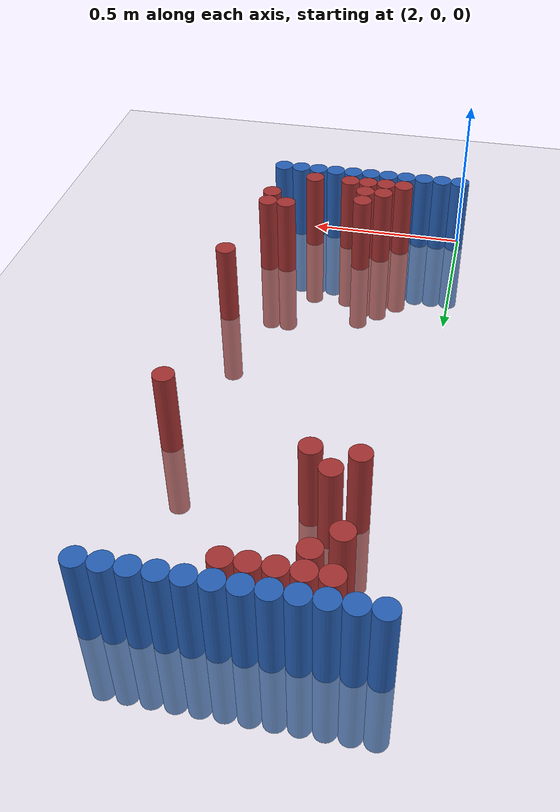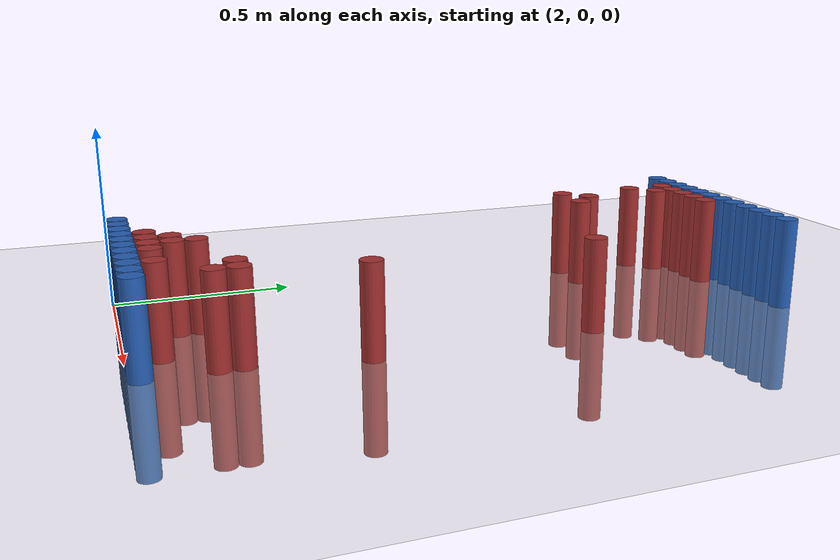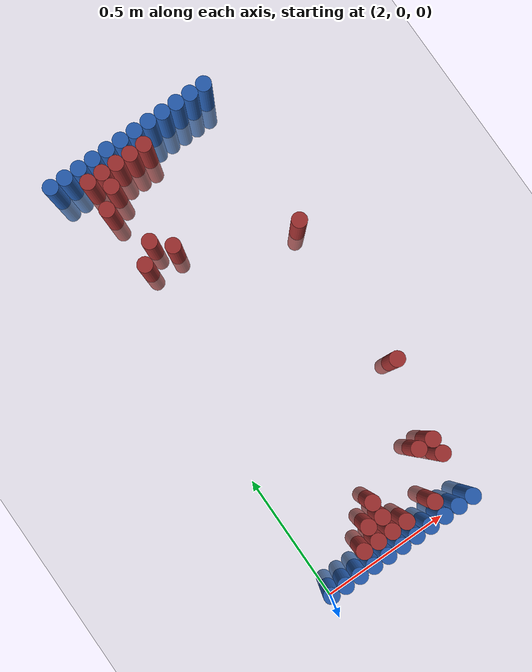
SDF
<sdf version="1.6">
 <world name="default">
  <model name="ground_plane">
   <static>1</static>
   <link name="link">
    <collision name="collision">
     <geometry><plane><normal>0 0 1</normal><size>100 100</size></plane></geometry>
     <surface><friction><ode><mu>100</mu><mu2>50</mu2></ode></friction></surface>
    </collision>
    <visual name="visual">
     <cast_shadows>0</cast_shadows>
     <geometry><plane><normal>0 0 1</normal><size>100 100</size></plane></geometry>
     <material>
      <script><uri>file://media/materials/scripts/gazebo.material</uri><name>Gazebo/Grey</name></script>
     </material>
    </visual>
   </link>
  </model>
  <model name="unit_cylinder_93">
   <static>1</static>
   <pose>2.010000 0.030000 0.000000 0.000000 0.000000 0.000000</pose>
   <link name="link">
    <inertial>
     <mass>1</mass>
     <inertia><ixx>0.145833</ixx><ixy>0</ixy><ixz>0</ixz><iyy>0.145833</iyy><iyz>0</iyz><izz>0.125</izz></inertia>
    </inertial>
    <collision name="collision">
     <geometry><cylinder><radius>0.030000</radius><length>0.5</length></cylinder></geometry>
    </collision>
    <visual name="visual">
     <geometry><cylinder><radius>0.030000</radius><length>0.5</length></cylinder></geometry>
     <material>
      <ambient>0.152000 0.379000 0.720000 1</ambient>
      <diffuse>0.152000 0.379000 0.720000 1</diffuse>
     </material>
     <material>
      <script><name>Gazebo/Grey</name><uri>file://media/materials/scripts/gazebo.material</uri></script>
     </material>
    </visual>
   </link>
  </model>
  <model name="unit_cylinder_94">
   <static>1</static>
   <pose>2.010000 1.770000 0.000000 0.000000 0.000000 0.000000</pose>
   <link name="link">
    <inertial>
     <mass>1</mass>
     <inertia><ixx>0.145833</ixx><ixy>0</ixy><ixz>0</ixz><iyy>0.145833</iyy><iyz>0</iyz><izz>0.125</izz></inertia>
    </inertial>
    <collision name="collision">
     <geometry><cylinder><radius>0.030000</radius><length>0.5</length></cylinder></geometry>
    </collision>
    <visual name="visual">
     <geometry><cylinder><radius>0.030000</radius><length>0.5</length></cylinder></geometry>
     <material>
      <ambient>0.152000 0.379000 0.720000 1</ambient>
      <diffuse>0.152000 0.379000 0.720000 1</diffuse>
     </material>
     <material>
      <script><name>Gazebo/Grey</name><uri>file://media/materials/scripts/gazebo.material</uri></script>
     </material>
    </visual>
   </link>
  </model>
  <model name="unit_cylinder_95">
   <static>1</static>
   <pose>2.070000 1.770000 0.000000 0.000000 0.000000 0.000000</pose>
   <link name="link">
    <inertial>
     <mass>1</mass>
     <inertia><ixx>0.145833</ixx><ixy>0</ixy><ixz>0</ixz><iyy>0.145833</iyy><iyz>0</iyz><izz>0.125</izz></inertia>
    </inertial>
    <collision name="collision">
     <geometry><cylinder><radius>0.030000</radius><length>0.5</length></cylinder></geometry>
    </collision>
    <visual name="visual">
     <geometry><cylinder><radius>0.030000</radius><length>0.5</length></cylinder></geometry>
     <material>
      <ambient>0.152000 0.379000 0.720000 1</ambient>
      <diffuse>0.152000 0.379000 0.720000 1</diffuse>
     </material>
     <material>
      <script><name>Gazebo/Grey</name><uri>file://media/materials/scripts/gazebo.material</uri></script>
     </material>
    </visual>
   </link>
  </model>
  <model name="unit_cylinder_96">
   <static>1</static>
   <pose>2.130000 1.770000 0.000000 0.000000 0.000000 0.000000</pose>
   <link name="link">
    <inertial>
     <mass>1</mass>
     <inertia><ixx>0.145833</ixx><ixy>0</ixy><ixz>0</ixz><iyy>0.145833</iyy><iyz>0</iyz><izz>0.125</izz></inertia>
    </inertial>
    <collision name="collision">
     <geometry><cylinder><radius>0.030000</radius><length>0.5</length></cylinder></geometry>
    </collision>
    <visual name="visual">
     <geometry><cylinder><radius>0.030000</radius><length>0.5</length></cylinder></geometry>
     <material>
      <ambient>0.152000 0.379000 0.720000 1</ambient>
      <diffuse>0.152000 0.379000 0.720000 1</diffuse>
     </material>
     <material>
      <script><name>Gazebo/Grey</name><uri>file://media/materials/scripts/gazebo.material</uri></script>
     </material>
    </visual>
   </link>
  </model>
  <model name="unit_cylinder_97">
   <static>1</static>
   <pose>2.190000 1.770000 0.000000 0.000000 0.000000 0.000000</pose>
   <link name="link">
    <inertial>
     <mass>1</mass>
     <inertia><ixx>0.145833</ixx><ixy>0</ixy><ixz>0</ixz><iyy>0.145833</iyy><iyz>0</iyz><izz>0.125</izz></inertia>
    </inertial>
    <collision name="collision">
     <geometry><cylinder><radius>0.030000</radius><length>0.5</length></cylinder></geometry>
    </collision>
    <visual name="visual">
     <geometry><cylinder><radius>0.030000</radius><length>0.5</length></cylinder></geometry>
     <material>
      <ambient>0.152000 0.379000 0.720000 1</ambient>
      <diffuse>0.152000 0.379000 0.720000 1</diffuse>
     </material>
     <material>
      <script><name>Gazebo/Grey</name><uri>file://media/materials/scripts/gazebo.material</uri></script>
     </material>
    </visual>
   </link>
  </model>
  <model name="unit_cylinder_98">
   <static>1</static>
   <pose>2.250000 1.770000 0.000000 0.000000 0.000000 0.000000</pose>
   <link name="link">
    <inertial>
     <mass>1</mass>
     <inertia><ixx>0.145833</ixx><ixy>0</ixy><ixz>0</ixz><iyy>0.145833</iyy><iyz>0</iyz><izz>0.125</izz></inertia>
    </inertial>
    <collision name="collision">
     <geometry><cylinder><radius>0.030000</radius><length>0.5</length></cylinder></geometry>
    </collision>
    <visual name="visual">
     <geometry><cylinder><radius>0.030000</radius><length>0.5</length></cylinder></geometry>
     <material>
      <ambient>0.152000 0.379000 0.720000 1</ambient>
      <diffuse>0.152000 0.379000 0.720000 1</diffuse>
     </material>
     <material>
      <script><name>Gazebo/Grey</name><uri>file://media/materials/scripts/gazebo.material</uri></script>
     </material>
    </visual>
   </link>
  </model>
  <model name="unit_cylinder_99">
   <static>1</static>
   <pose>2.310000 1.770000 0.000000 0.000000 0.000000 0.000000</pose>
   <link name="link">
    <inertial>
     <mass>1</mass>
     <inertia><ixx>0.145833</ixx><ixy>0</ixy><ixz>0</ixz><iyy>0.145833</iyy><iyz>0</iyz><izz>0.125</izz></inertia>
    </inertial>
    <collision name="collision">
     <geometry><cylinder><radius>0.030000</radius><length>0.5</length></cylinder></geometry>
    </collision>
    <visual name="visual">
     <geometry><cylinder><radius>0.030000</radius><length>0.5</length></cylinder></geometry>
     <material>
      <ambient>0.152000 0.379000 0.720000 1</ambient>
      <diffuse>0.152000 0.379000 0.720000 1</diffuse>
     </material>
     <material>
      <script><name>Gazebo/Grey</name><uri>file://media/materials/scripts/gazebo.material</uri></script>
     </material>
    </visual>
   </link>
  </model>
  <model name="unit_cylinder_100">
   <static>1</static>
   <pose>2.370000 1.770000 0.000000 0.000000 0.000000 0.000000</pose>
   <link name="link">
    <inertial>
     <mass>1</mass>
     <inertia><ixx>0.145833</ixx><ixy>0</ixy><ixz>0</ixz><iyy>0.145833</iyy><iyz>0</iyz><izz>0.125</izz></inertia>
    </inertial>
    <collision name="collision">
     <geometry><cylinder><radius>0.030000</radius><length>0.5</length></cylinder></geometry>
    </collision>
    <visual name="visual">
     <geometry><cylinder><radius>0.030000</radius><length>0.5</length></cylinder></geometry>
     <material>
      <ambient>0.152000 0.379000 0.720000 1</ambient>
      <diffuse>0.152000 0.379000 0.720000 1</diffuse>
     </material>
     <material>
      <script><name>Gazebo/Grey</name><uri>file://media/materials/scripts/gazebo.material</uri></script>
     </material>
    </visual>
   </link>
  </model>
  <model name="unit_cylinder_101">
   <static>1</static>
   <pose>2.430000 1.770000 0.000000 0.000000 0.000000 0.000000</pose>
   <link name="link">
    <inertial>
     <mass>1</mass>
     <inertia><ixx>0.145833</ixx><ixy>0</ixy><ixz>0</ixz><iyy>0.145833</iyy><iyz>0</iyz><izz>0.125</izz></inertia>
    </inertial>
    <collision name="collision">
     <geometry><cylinder><radius>0.030000</radius><length>0.5</length></cylinder></geometry>
    </collision>
    <visual name="visual">
     <geometry><cylinder><radius>0.030000</radius><length>0.5</length></cylinder></geometry>
     <material>
      <ambient>0.152000 0.379000 0.720000 1</ambient>
      <diffuse>0.152000 0.379000 0.720000 1</diffuse>
     </material>
     <material>
      <script><name>Gazebo/Grey</name><uri>file://media/materials/scripts/gazebo.material</uri></script>
     </material>
    </visual>
   </link>
  </model>
  <model name="unit_cylinder_102">
   <static>1</static>
   <pose>2.490000 1.770000 0.000000 0.000000 0.000000 0.000000</pose>
   <link name="link">
    <inertial>
     <mass>1</mass>
     <inertia><ixx>0.145833</ixx><ixy>0</ixy><ixz>0</ixz><iyy>0.145833</iyy><iyz>0</iyz><izz>0.125</izz></inertia>
    </inertial>
    <collision name="collision">
     <geometry><cylinder><radius>0.030000</radius><length>0.5</length></cylinder></geometry>
    </collision>
    <visual name="visual">
     <geometry><cylinder><radius>0.030000</radius><length>0.5</length></cylinder></geometry>
     <material>
      <ambient>0.152000 0.379000 0.720000 1</ambient>
      <diffuse>0.152000 0.379000 0.720000 1</diffuse>
     </material>
     <material>
      <script><name>Gazebo/Grey</name><uri>file://media/materials/scripts/gazebo.material</uri></script>
     </material>
    </visual>
   </link>
  </model>
  <model name="unit_cylinder_103">
   <static>1</static>
   <pose>2.550000 1.770000 0.000000 0.000000 0.000000 0.000000</pose>
   <link name="link">
    <inertial>
     <mass>1</mass>
     <inertia><ixx>0.145833</ixx><ixy>0</ixy><ixz>0</ixz><iyy>0.145833</iyy><iyz>0</iyz><izz>0.125</izz></inertia>
    </inertial>
    <collision name="collision">
     <geometry><cylinder><radius>0.030000</radius><length>0.5</length></cylinder></geometry>
    </collision>
    <visual name="visual">
     <geometry><cylinder><radius>0.030000</radius><length>0.5</length></cylinder></geometry>
     <material>
      <ambient>0.152000 0.379000 0.720000 1</ambient>
      <diffuse>0.152000 0.379000 0.720000 1</diffuse>
     </material>
     <material>
      <script><name>Gazebo/Grey</name><uri>file://media/materials/scripts/gazebo.material</uri></script>
     </material>
    </visual>
   </link>
  </model>
  <model name="unit_cylinder_104">
   <static>1</static>
   <pose>2.610000 1.770000 0.000000 0.000000 0.000000 0.000000</pose>
   <link name="link">
    <inertial>
     <mass>1</mass>
     <inertia><ixx>0.145833</ixx><ixy>0</ixy><ixz>0</ixz><iyy>0.145833</iyy><iyz>0</iyz><izz>0.125</izz></inertia>
    </inertial>
    <collision name="collision">
     <geometry><cylinder><radius>0.030000</radius><length>0.5</length></cylinder></geometry>
    </collision>
    <visual name="visual">
     <geometry><cylinder><radius>0.030000</radius><length>0.5</length></cylinder></geometry>
     <material>
      <ambient>0.152000 0.379000 0.720000 1</ambient>
      <diffuse>0.152000 0.379000 0.720000 1</diffuse>
     </material>
     <material>
      <script><name>Gazebo/Grey</name><uri>file://media/materials/scripts/gazebo.material</uri></script>
     </material>
    </visual>
   </link>
  </model>
  <model name="unit_cylinder_105">
   <static>1</static>
   <pose>2.670000 1.770000 0.000000 0.000000 0.000000 0.000000</pose>
   <link name="link">
    <inertial>
     <mass>1</mass>
     <inertia><ixx>0.145833</ixx><ixy>0</ixy><ixz>0</ixz><iyy>0.145833</iyy><iyz>0</iyz><izz>0.125</izz></inertia>
    </inertial>
    <collision name="collision">
     <geometry><cylinder><radius>0.030000</radius><length>0.5</length></cylinder></geometry>
    </collision>
    <visual name="visual">
     <geometry><cylinder><radius>0.030000</radius><length>0.5</length></cylinder></geometry>
     <material>
      <ambient>0.152000 0.379000 0.720000 1</ambient>
      <diffuse>0.152000 0.379000 0.720000 1</diffuse>
     </material>
     <material>
      <script><name>Gazebo/Grey</name><uri>file://media/materials/scripts/gazebo.material</uri></script>
     </material>
    </visual>
   </link>
  </model>
  <model name="unit_cylinder_125">
   <static>1</static>
   <pose>2.130000 1.710000 0.000000 0.000000 0.000000 0.000000</pose>
   <link name="link">
    <inertial>
     <mass>1</mass>
     <inertia><ixx>0.145833</ixx><ixy>0</ixy><ixz>0</ixz><iyy>0.145833</iyy><iyz>0</iyz><izz>0.125</izz></inertia>
    </inertial>
    <collision name="collision">
     <geometry><cylinder><radius>0.030000</radius><length>0.5</length></cylinder></geometry>
    </collision>
    <visual name="visual">
     <geometry><cylinder><radius>0.030000</radius><length>0.5</length></cylinder></geometry>
     <material>
      <ambient>0.648000 0.192000 0.192000 1</ambient>
      <diffuse>0.648000 0.192000 0.192000 1</diffuse>
     </material>
     <material>
      <script><name>Gazebo/Grey</name><uri>file://media/materials/scripts/gazebo.material</uri></script>
     </material>
    </visual>
   </link>
  </model>
  <model name="unit_cylinder_126">
   <static>1</static>
   <pose>2.190000 1.710000 0.000000 0.000000 0.000000 0.000000</pose>
   <link name="link">
    <inertial>
     <mass>1</mass>
     <inertia><ixx>0.145833</ixx><ixy>0</ixy><ixz>0</ixz><iyy>0.145833</iyy><iyz>0</iyz><izz>0.125</izz></inertia>
    </inertial>
    <collision name="collision">
     <geometry><cylinder><radius>0.030000</radius><length>0.5</length></cylinder></geometry>
    </collision>
    <visual name="visual">
     <geometry><cylinder><radius>0.030000</radius><length>0.5</length></cylinder></geometry>
     <material>
      <ambient>0.648000 0.192000 0.192000 1</ambient>
      <diffuse>0.648000 0.192000 0.192000 1</diffuse>
     </material>
     <material>
      <script><name>Gazebo/Grey</name><uri>file://media/materials/scripts/gazebo.material</uri></script>
     </material>
    </visual>
   </link>
  </model>
  <model name="unit_cylinder_127">
   <static>1</static>
   <pose>2.250000 1.710000 0.000000 0.000000 0.000000 0.000000</pose>
   <link name="link">
    <inertial>
     <mass>1</mass>
     <inertia><ixx>0.145833</ixx><ixy>0</ixy><ixz>0</ixz><iyy>0.145833</iyy><iyz>0</iyz><izz>0.125</izz></inertia>
    </inertial>
    <collision name="collision">
     <geometry><cylinder><radius>0.030000</radius><length>0.5</length></cylinder></geometry>
    </collision>
    <visual name="visual">
     <geometry><cylinder><radius>0.030000</radius><length>0.5</length></cylinder></geometry>
     <material>
      <ambient>0.648000 0.192000 0.192000 1</ambient>
      <diffuse>0.648000 0.192000 0.192000 1</diffuse>
     </material>
     <material>
      <script><name>Gazebo/Grey</name><uri>file://media/materials/scripts/gazebo.material</uri></script>
     </material>
    </visual>
   </link>
  </model>
  <model name="unit_cylinder_128">
   <static>1</static>
   <pose>2.310000 1.710000 0.000000 0.000000 0.000000 0.000000</pose>
   <link name="link">
    <inertial>
     <mass>1</mass>
     <inertia><ixx>0.145833</ixx><ixy>0</ixy><ixz>0</ixz><iyy>0.145833</iyy><iyz>0</iyz><izz>0.125</izz></inertia>
    </inertial>
    <collision name="collision">
     <geometry><cylinder><radius>0.030000</radius><length>0.5</length></cylinder></geometry>
    </collision>
    <visual name="visual">
     <geometry><cylinder><radius>0.030000</radius><length>0.5</length></cylinder></geometry>
     <material>
      <ambient>0.648000 0.192000 0.192000 1</ambient>
      <diffuse>0.648000 0.192000 0.192000 1</diffuse>
     </material>
     <material>
      <script><name>Gazebo/Grey</name><uri>file://media/materials/scripts/gazebo.material</uri></script>
     </material>
    </visual>
   </link>
  </model>
  <model name="unit_cylinder_129">
   <static>1</static>
   <pose>2.370000 1.710000 0.000000 0.000000 0.000000 0.000000</pose>
   <link name="link">
    <inertial>
     <mass>1</mass>
     <inertia><ixx>0.145833</ixx><ixy>0</ixy><ixz>0</ixz><iyy>0.145833</iyy><iyz>0</iyz><izz>0.125</izz></inertia>
    </inertial>
    <collision name="collision">
     <geometry><cylinder><radius>0.030000</radius><length>0.5</length></cylinder></geometry>
    </collision>
    <visual name="visual">
     <geometry><cylinder><radius>0.030000</radius><length>0.5</length></cylinder></geometry>
     <material>
      <ambient>0.648000 0.192000 0.192000 1</ambient>
      <diffuse>0.648000 0.192000 0.192000 1</diffuse>
     </material>
     <material>
      <script><name>Gazebo/Grey</name><uri>file://media/materials/scripts/gazebo.material</uri></script>
     </material>
    </visual>
   </link>
  </model>
  <model name="unit_cylinder_136">
   <static>1</static>
   <pose>2.190000 1.650000 0.000000 0.000000 0.000000 0.000000</pose>
   <link name="link">
    <inertial>
     <mass>1</mass>
     <inertia><ixx>0.145833</ixx><ixy>0</ixy><ixz>0</ixz><iyy>0.145833</iyy><iyz>0</iyz><izz>0.125</izz></inertia>
    </inertial>
    <collision name="collision">
     <geometry><cylinder><radius>0.030000</radius><length>0.5</length></cylinder></geometry>
    </collision>
    <visual name="visual">
     <geometry><cylinder><radius>0.030000</radius><length>0.5</length></cylinder></geometry>
     <material>
      <ambient>0.648000 0.192000 0.192000 1</ambient>
      <diffuse>0.648000 0.192000 0.192000 1</diffuse>
     </material>
     <material>
      <script><name>Gazebo/Grey</name><uri>file://media/materials/scripts/gazebo.material</uri></script>
     </material>
    </visual>
   </link>
  </model>
  <model name="unit_cylinder_139">
   <static>1</static>
   <pose>2.130000 1.590000 0.000000 0.000000 0.000000 0.000000</pose>
   <link name="link">
    <inertial>
     <mass>1</mass>
     <inertia><ixx>0.145833</ixx><ixy>0</ixy><ixz>0</ixz><iyy>0.145833</iyy><iyz>0</iyz><izz>0.125</izz></inertia>
    </inertial>
    <collision name="collision">
     <geometry><cylinder><radius>0.030000</radius><length>0.5</length></cylinder></geometry>
    </collision>
    <visual name="visual">
     <geometry><cylinder><radius>0.030000</radius><length>0.5</length></cylinder></geometry>
     <material>
      <ambient>0.648000 0.192000 0.192000 1</ambient>
      <diffuse>0.648000 0.192000 0.192000 1</diffuse>
     </material>
     <material>
      <script><name>Gazebo/Grey</name><uri>file://media/materials/scripts/gazebo.material</uri></script>
     </material>
    </visual>
   </link>
  </model>
  <model name="unit_cylinder_145">
   <static>1</static>
   <pose>2.190000 1.410000 0.000000 0.000000 0.000000 0.000000</pose>
   <link name="link">
    <inertial>
     <mass>1</mass>
     <inertia><ixx>0.145833</ixx><ixy>0</ixy><ixz>0</ixz><iyy>0.145833</iyy><iyz>0</iyz><izz>0.125</izz></inertia>
    </inertial>
    <collision name="collision">
     <geometry><cylinder><radius>0.030000</radius><length>0.5</length></cylinder></geometry>
    </collision>
    <visual name="visual">
     <geometry><cylinder><radius>0.030000</radius><length>0.5</length></cylinder></geometry>
     <material>
      <ambient>0.648000 0.192000 0.192000 1</ambient>
      <diffuse>0.648000 0.192000 0.192000 1</diffuse>
     </material>
     <material>
      <script><name>Gazebo/Grey</name><uri>file://media/materials/scripts/gazebo.material</uri></script>
     </material>
    </visual>
   </link>
  </model>
  <model name="unit_cylinder_146">
   <static>1</static>
   <pose>2.130000 1.350000 0.000000 0.000000 0.000000 0.000000</pose>
   <link name="link">
    <inertial>
     <mass>1</mass>
     <inertia><ixx>0.145833</ixx><ixy>0</ixy><ixz>0</ixz><iyy>0.145833</iyy><iyz>0</iyz><izz>0.125</izz></inertia>
    </inertial>
    <collision name="collision">
     <geometry><cylinder><radius>0.030000</radius><length>0.5</length></cylinder></geometry>
    </collision>
    <visual name="visual">
     <geometry><cylinder><radius>0.030000</radius><length>0.5</length></cylinder></geometry>
     <material>
      <ambient>0.648000 0.192000 0.192000 1</ambient>
      <diffuse>0.648000 0.192000 0.192000 1</diffuse>
     </material>
     <material>
      <script><name>Gazebo/Grey</name><uri>file://media/materials/scripts/gazebo.material</uri></script>
     </material>
    </visual>
   </link>
  </model>
  <model name="unit_cylinder_147">
   <static>1</static>
   <pose>2.250000 1.350000 0.000000 0.000000 0.000000 0.000000</pose>
   <link name="link">
    <inertial>
     <mass>1</mass>
     <inertia><ixx>0.145833</ixx><ixy>0</ixy><ixz>0</ixz><iyy>0.145833</iyy><iyz>0</iyz><izz>0.125</izz></inertia>
    </inertial>
    <collision name="collision">
     <geometry><cylinder><radius>0.030000</radius><length>0.5</length></cylinder></geometry>
    </collision>
    <visual name="visual">
     <geometry><cylinder><radius>0.030000</radius><length>0.5</length></cylinder></geometry>
     <material>
      <ambient>0.648000 0.192000 0.192000 1</ambient>
      <diffuse>0.648000 0.192000 0.192000 1</diffuse>
     </material>
     <material>
      <script><name>Gazebo/Grey</name><uri>file://media/materials/scripts/gazebo.material</uri></script>
     </material>
    </visual>
   </link>
  </model>
  <model name="unit_cylinder_153">
   <static>1</static>
   <pose>2.670000 1.170000 0.000000 0.000000 0.000000 0.000000</pose>
   <link name="link">
    <inertial>
     <mass>1</mass>
     <inertia><ixx>0.145833</ixx><ixy>0</ixy><ixz>0</ixz><iyy>0.145833</iyy><iyz>0</iyz><izz>0.125</izz></inertia>
    </inertial>
    <collision name="collision">
     <geometry><cylinder><radius>0.030000</radius><length>0.5</length></cylinder></geometry>
    </collision>
    <visual name="visual">
     <geometry><cylinder><radius>0.030000</radius><length>0.5</length></cylinder></geometry>
     <material>
      <ambient>0.648000 0.192000 0.192000 1</ambient>
      <diffuse>0.648000 0.192000 0.192000 1</diffuse>
     </material>
     <material>
      <script><name>Gazebo/Grey</name><uri>file://media/materials/scripts/gazebo.material</uri></script>
     </material>
    </visual>
   </link>
  </model>
  <model name="unit_cylinder_161">
   <static>1</static>
   <pose>2.670000 0.570000 0.000000 0.000000 0.000000 0.000000</pose>
   <link name="link">
    <inertial>
     <mass>1</mass>
     <inertia><ixx>0.145833</ixx><ixy>0</ixy><ixz>0</ixz><iyy>0.145833</iyy><iyz>0</iyz><izz>0.125</izz></inertia>
    </inertial>
    <collision name="collision">
     <geometry><cylinder><radius>0.030000</radius><length>0.5</length></cylinder></geometry>
    </collision>
    <visual name="visual">
     <geometry><cylinder><radius>0.030000</radius><length>0.5</length></cylinder></geometry>
     <material>
      <ambient>0.648000 0.192000 0.192000 1</ambient>
      <diffuse>0.648000 0.192000 0.192000 1</diffuse>
     </material>
     <material>
      <script><name>Gazebo/Grey</name><uri>file://media/materials/scripts/gazebo.material</uri></script>
     </material>
    </visual>
   </link>
  </model>
  <model name="unit_cylinder_177">
   <static>1</static>
   <pose>2.550000 0.270000 0.000000 0.000000 0.000000 0.000000</pose>
   <link name="link">
    <inertial>
     <mass>1</mass>
     <inertia><ixx>0.145833</ixx><ixy>0</ixy><ixz>0</ixz><iyy>0.145833</iyy><iyz>0</iyz><izz>0.125</izz></inertia>
    </inertial>
    <collision name="collision">
     <geometry><cylinder><radius>0.030000</radius><length>0.5</length></cylinder></geometry>
    </collision>
    <visual name="visual">
     <geometry><cylinder><radius>0.030000</radius><length>0.5</length></cylinder></geometry>
     <material>
      <ambient>0.648000 0.192000 0.192000 1</ambient>
      <diffuse>0.648000 0.192000 0.192000 1</diffuse>
     </material>
     <material>
      <script><name>Gazebo/Grey</name><uri>file://media/materials/scripts/gazebo.material</uri></script>
     </material>
    </visual>
   </link>
  </model>
  <model name="unit_cylinder_178">
   <static>1</static>
   <pose>2.610000 0.270000 0.000000 0.000000 0.000000 0.000000</pose>
   <link name="link">
    <inertial>
     <mass>1</mass>
     <inertia><ixx>0.145833</ixx><ixy>0</ixy><ixz>0</ixz><iyy>0.145833</iyy><iyz>0</iyz><izz>0.125</izz></inertia>
    </inertial>
    <collision name="collision">
     <geometry><cylinder><radius>0.030000</radius><length>0.5</length></cylinder></geometry>
    </collision>
    <visual name="visual">
     <geometry><cylinder><radius>0.030000</radius><length>0.5</length></cylinder></geometry>
     <material>
      <ambient>0.648000 0.192000 0.192000 1</ambient>
      <diffuse>0.648000 0.192000 0.192000 1</diffuse>
     </material>
     <material>
      <script><name>Gazebo/Grey</name><uri>file://media/materials/scripts/gazebo.material</uri></script>
     </material>
    </visual>
   </link>
  </model>
  <model name="unit_cylinder_182">
   <static>1</static>
   <pose>2.310000 0.210000 0.000000 0.000000 0.000000 0.000000</pose>
   <link name="link">
    <inertial>
     <mass>1</mass>
     <inertia><ixx>0.145833</ixx><ixy>0</ixy><ixz>0</ixz><iyy>0.145833</iyy><iyz>0</iyz><izz>0.125</izz></inertia>
    </inertial>
    <collision name="collision">
     <geometry><cylinder><radius>0.030000</radius><length>0.5</length></cylinder></geometry>
    </collision>
    <visual name="visual">
     <geometry><cylinder><radius>0.030000</radius><length>0.5</length></cylinder></geometry>
     <material>
      <ambient>0.648000 0.192000 0.192000 1</ambient>
      <diffuse>0.648000 0.192000 0.192000 1</diffuse>
     </material>
     <material>
      <script><name>Gazebo/Grey</name><uri>file://media/materials/scripts/gazebo.material</uri></script>
     </material>
    </visual>
   </link>
  </model>
  <model name="unit_cylinder_183">
   <static>1</static>
   <pose>2.610000 0.210000 0.000000 0.000000 0.000000 0.000000</pose>
   <link name="link">
    <inertial>
     <mass>1</mass>
     <inertia><ixx>0.145833</ixx><ixy>0</ixy><ixz>0</ixz><iyy>0.145833</iyy><iyz>0</iyz><izz>0.125</izz></inertia>
    </inertial>
    <collision name="collision">
     <geometry><cylinder><radius>0.030000</radius><length>0.5</length></cylinder></geometry>
    </collision>
    <visual name="visual">
     <geometry><cylinder><radius>0.030000</radius><length>0.5</length></cylinder></geometry>
     <material>
      <ambient>0.648000 0.192000 0.192000 1</ambient>
      <diffuse>0.648000 0.192000 0.192000 1</diffuse>
     </material>
     <material>
      <script><name>Gazebo/Grey</name><uri>file://media/materials/scripts/gazebo.material</uri></script>
     </material>
    </visual>
   </link>
  </model>
  <model name="unit_cylinder_186">
   <static>1</static>
   <pose>2.250000 0.150000 0.000000 0.000000 0.000000 0.000000</pose>
   <link name="link">
    <inertial>
     <mass>1</mass>
     <inertia><ixx>0.145833</ixx><ixy>0</ixy><ixz>0</ixz><iyy>0.145833</iyy><iyz>0</iyz><izz>0.125</izz></inertia>
    </inertial>
    <collision name="collision">
     <geometry><cylinder><radius>0.030000</radius><length>0.5</length></cylinder></geometry>
    </collision>
    <visual name="visual">
     <geometry><cylinder><radius>0.030000</radius><length>0.5</length></cylinder></geometry>
     <material>
      <ambient>0.648000 0.192000 0.192000 1</ambient>
      <diffuse>0.648000 0.192000 0.192000 1</diffuse>
     </material>
     <material>
      <script><name>Gazebo/Grey</name><uri>file://media/materials/scripts/gazebo.material</uri></script>
     </material>
    </visual>
   </link>
  </model>
  <model name="unit_cylinder_187">
   <static>1</static>
   <pose>2.310000 0.150000 0.000000 0.000000 0.000000 0.000000</pose>
   <link name="link">
    <inertial>
     <mass>1</mass>
     <inertia><ixx>0.145833</ixx><ixy>0</ixy><ixz>0</ixz><iyy>0.145833</iyy><iyz>0</iyz><izz>0.125</izz></inertia>
    </inertial>
    <collision name="collision">
     <geometry><cylinder><radius>0.030000</radius><length>0.5</length></cylinder></geometry>
    </collision>
    <visual name="visual">
     <geometry><cylinder><radius>0.030000</radius><length>0.5</length></cylinder></geometry>
     <material>
      <ambient>0.648000 0.192000 0.192000 1</ambient>
      <diffuse>0.648000 0.192000 0.192000 1</diffuse>
     </material>
     <material>
      <script><name>Gazebo/Grey</name><uri>file://media/materials/scripts/gazebo.material</uri></script>
     </material>
    </visual>
   </link>
  </model>
  <model name="unit_cylinder_189">
   <static>1</static>
   <pose>2.190000 0.090000 0.000000 0.000000 0.000000 0.000000</pose>
   <link name="link">
    <inertial>
     <mass>1</mass>
     <inertia><ixx>0.145833</ixx><ixy>0</ixy><ixz>0</ixz><iyy>0.145833</iyy><iyz>0</iyz><izz>0.125</izz></inertia>
    </inertial>
    <collision name="collision">
     <geometry><cylinder><radius>0.030000</radius><length>0.5</length></cylinder></geometry>
    </collision>
    <visual name="visual">
     <geometry><cylinder><radius>0.030000</radius><length>0.5</length></cylinder></geometry>
     <material>
      <ambient>0.648000 0.192000 0.192000 1</ambient>
      <diffuse>0.648000 0.192000 0.192000 1</diffuse>
     </material>
     <material>
      <script><name>Gazebo/Grey</name><uri>file://media/materials/scripts/gazebo.material</uri></script>
     </material>
    </visual>
   </link>
  </model>
  <model name="unit_cylinder_190">
   <static>1</static>
   <pose>2.250000 0.090000 0.000000 0.000000 0.000000 0.000000</pose>
   <link name="link">
    <inertial>
     <mass>1</mass>
     <inertia><ixx>0.145833</ixx><ixy>0</ixy><ixz>0</ixz><iyy>0.145833</iyy><iyz>0</iyz><izz>0.125</izz></inertia>
    </inertial>
    <collision name="collision">
     <geometry><cylinder><radius>0.030000</radius><length>0.5</length></cylinder></geometry>
    </collision>
    <visual name="visual">
     <geometry><cylinder><radius>0.030000</radius><length>0.5</length></cylinder></geometry>
     <material>
      <ambient>0.648000 0.192000 0.192000 1</ambient>
      <diffuse>0.648000 0.192000 0.192000 1</diffuse>
     </material>
     <material>
      <script><name>Gazebo/Grey</name><uri>file://media/materials/scripts/gazebo.material</uri></script>
     </material>
    </visual>
   </link>
  </model>
  <model name="unit_cylinder_191">
   <static>1</static>
   <pose>2.310000 0.090000 0.000000 0.000000 0.000000 0.000000</pose>
   <link name="link">
    <inertial>
     <mass>1</mass>
     <inertia><ixx>0.145833</ixx><ixy>0</ixy><ixz>0</ixz><iyy>0.145833</iyy><iyz>0</iyz><izz>0.125</izz></inertia>
    </inertial>
    <collision name="collision">
     <geometry><cylinder><radius>0.030000</radius><length>0.5</length></cylinder></geometry>
    </collision>
    <visual name="visual">
     <geometry><cylinder><radius>0.030000</radius><length>0.5</length></cylinder></geometry>
     <material>
      <ambient>0.648000 0.192000 0.192000 1</ambient>
      <diffuse>0.648000 0.192000 0.192000 1</diffuse>
     </material>
     <material>
      <script><name>Gazebo/Grey</name><uri>file://media/materials/scripts/gazebo.material</uri></script>
     </material>
    </visual>
   </link>
  </model>
  <model name="unit_cylinder_192">
   <static>1</static>
   <pose>2.370000 0.090000 0.000000 0.000000 0.000000 0.000000</pose>
   <link name="link">
    <inertial>
     <mass>1</mass>
     <inertia><ixx>0.145833</ixx><ixy>0</ixy><ixz>0</ixz><iyy>0.145833</iyy><iyz>0</iyz><izz>0.125</izz></inertia>
    </inertial>
    <collision name="collision">
     <geometry><cylinder><radius>0.030000</radius><length>0.5</length></cylinder></geometry>
    </collision>
    <visual name="visual">
     <geometry><cylinder><radius>0.030000</radius><length>0.5</length></cylinder></geometry>
     <material>
      <ambient>0.648000 0.192000 0.192000 1</ambient>
      <diffuse>0.648000 0.192000 0.192000 1</diffuse>
     </material>
     <material>
      <script><name>Gazebo/Grey</name><uri>file://media/materials/scripts/gazebo.material</uri></script>
     </material>
    </visual>
   </link>
  </model>
  <model name="unit_cylinder_193">
   <static>1</static>
   <pose>2.490000 0.090000 0.000000 0.000000 0.000000 0.000000</pose>
   <link name="link">
    <inertial>
     <mass>1</mass>
     <inertia><ixx>0.145833</ixx><ixy>0</ixy><ixz>0</ixz><iyy>0.145833</iyy><iyz>0</iyz><izz>0.125</izz></inertia>
    </inertial>
    <collision name="collision">
     <geometry><cylinder><radius>0.030000</radius><length>0.5</length></cylinder></geometry>
    </collision>
    <visual name="visual">
     <geometry><cylinder><radius>0.030000</radius><length>0.5</length></cylinder></geometry>
     <material>
      <ambient>0.648000 0.192000 0.192000 1</ambient>
      <diffuse>0.648000 0.192000 0.192000 1</diffuse>
     </material>
     <material>
      <script><name>Gazebo/Grey</name><uri>file://media/materials/scripts/gazebo.material</uri></script>
     </material>
    </visual>
   </link>
  </model>
  <model name="unit_cylinder_202">
   <static>1</static>
   <pose>2.070000 0.030000 0.000000 0.000000 0.000000 0.000000</pose>
   <link name="link">
    <inertial>
     <mass>1</mass>
     <inertia><ixx>0.145833</ixx><ixy>0</ixy><ixz>0</ixz><iyy>0.145833</iyy><iyz>0</iyz><izz>0.125</izz></inertia>
    </inertial>
    <collision name="collision">
     <geometry><cylinder><radius>0.030000</radius><length>0.5</length></cylinder></geometry>
    </collision>
    <visual name="visual">
     <geometry><cylinder><radius>0.030000</radius><length>0.5</length></cylinder></geometry>
     <material>
      <ambient>0.152000 0.379000 0.720000 1</ambient>
      <diffuse>0.152000 0.379000 0.720000 1</diffuse>
     </material>
     <material>
      <script><name>Gazebo/Grey</name><uri>file://media/materials/scripts/gazebo.material</uri></script>
     </material>
    </visual>
   </link>
  </model>
  <model name="unit_cylinder_203">
   <static>1</static>
   <pose>2.130000 0.030000 0.000000 0.000000 0.000000 0.000000</pose>
   <link name="link">
    <inertial>
     <mass>1</mass>
     <inertia><ixx>0.145833</ixx><ixy>0</ixy><ixz>0</ixz><iyy>0.145833</iyy><iyz>0</iyz><izz>0.125</izz></inertia>
    </inertial>
    <collision name="collision">
     <geometry><cylinder><radius>0.030000</radius><length>0.5</length></cylinder></geometry>
    </collision>
    <visual name="visual">
     <geometry><cylinder><radius>0.030000</radius><length>0.5</length></cylinder></geometry>
     <material>
      <ambient>0.152000 0.379000 0.720000 1</ambient>
      <diffuse>0.152000 0.379000 0.720000 1</diffuse>
     </material>
     <material>
      <script><name>Gazebo/Grey</name><uri>file://media/materials/scripts/gazebo.material</uri></script>
     </material>
    </visual>
   </link>
  </model>
  <model name="unit_cylinder_204">
   <static>1</static>
   <pose>2.190000 0.030000 0.000000 0.000000 0.000000 0.000000</pose>
   <link name="link">
    <inertial>
     <mass>1</mass>
     <inertia><ixx>0.145833</ixx><ixy>0</ixy><ixz>0</ixz><iyy>0.145833</iyy><iyz>0</iyz><izz>0.125</izz></inertia>
    </inertial>
    <collision name="collision">
     <geometry><cylinder><radius>0.030000</radius><length>0.5</length></cylinder></geometry>
    </collision>
    <visual name="visual">
     <geometry><cylinder><radius>0.030000</radius><length>0.5</length></cylinder></geometry>
     <material>
      <ambient>0.152000 0.379000 0.720000 1</ambient>
      <diffuse>0.152000 0.379000 0.720000 1</diffuse>
     </material>
     <material>
      <script><name>Gazebo/Grey</name><uri>file://media/materials/scripts/gazebo.material</uri></script>
     </material>
    </visual>
   </link>
  </model>
  <model name="unit_cylinder_205">
   <static>1</static>
   <pose>2.250000 0.030000 0.000000 0.000000 0.000000 0.000000</pose>
   <link name="link">
    <inertial>
     <mass>1</mass>
     <inertia><ixx>0.145833</ixx><ixy>0</ixy><ixz>0</ixz><iyy>0.145833</iyy><iyz>0</iyz><izz>0.125</izz></inertia>
    </inertial>
    <collision name="collision">
     <geometry><cylinder><radius>0.030000</radius><length>0.5</length></cylinder></geometry>
    </collision>
    <visual name="visual">
     <geometry><cylinder><radius>0.030000</radius><length>0.5</length></cylinder></geometry>
     <material>
      <ambient>0.152000 0.379000 0.720000 1</ambient>
      <diffuse>0.152000 0.379000 0.720000 1</diffuse>
     </material>
     <material>
      <script><name>Gazebo/Grey</name><uri>file://media/materials/scripts/gazebo.material</uri></script>
     </material>
    </visual>
   </link>
  </model>
  <model name="unit_cylinder_206">
   <static>1</static>
   <pose>2.310000 0.030000 0.000000 0.000000 0.000000 0.000000</pose>
   <link name="link">
    <inertial>
     <mass>1</mass>
     <inertia><ixx>0.145833</ixx><ixy>0</ixy><ixz>0</ixz><iyy>0.145833</iyy><iyz>0</iyz><izz>0.125</izz></inertia>
    </inertial>
    <collision name="collision">
     <geometry><cylinder><radius>0.030000</radius><length>0.5</length></cylinder></geometry>
    </collision>
    <visual name="visual">
     <geometry><cylinder><radius>0.030000</radius><length>0.5</length></cylinder></geometry>
     <material>
      <ambient>0.152000 0.379000 0.720000 1</ambient>
      <diffuse>0.152000 0.379000 0.720000 1</diffuse>
     </material>
     <material>
      <script><name>Gazebo/Grey</name><uri>file://media/materials/scripts/gazebo.material</uri></script>
     </material>
    </visual>
   </link>
  </model>
  <model name="unit_cylinder_207">
   <static>1</static>
   <pose>2.370000 0.030000 0.000000 0.000000 0.000000 0.000000</pose>
   <link name="link">
    <inertial>
     <mass>1</mass>
     <inertia><ixx>0.145833</ixx><ixy>0</ixy><ixz>0</ixz><iyy>0.145833</iyy><iyz>0</iyz><izz>0.125</izz></inertia>
    </inertial>
    <collision name="collision">
     <geometry><cylinder><radius>0.030000</radius><length>0.5</length></cylinder></geometry>
    </collision>
    <visual name="visual">
     <geometry><cylinder><radius>0.030000</radius><length>0.5</length></cylinder></geometry>
     <material>
      <ambient>0.152000 0.379000 0.720000 1</ambient>
      <diffuse>0.152000 0.379000 0.720000 1</diffuse>
     </material>
     <material>
      <script><name>Gazebo/Grey</name><uri>file://media/materials/scripts/gazebo.material</uri></script>
     </material>
    </visual>
   </link>
  </model>
  <model name="unit_cylinder_208">
   <static>1</static>
   <pose>2.430000 0.030000 0.000000 0.000000 0.000000 0.000000</pose>
   <link name="link">
    <inertial>
     <mass>1</mass>
     <inertia><ixx>0.145833</ixx><ixy>0</ixy><ixz>0</ixz><iyy>0.145833</iyy><iyz>0</iyz><izz>0.125</izz></inertia>
    </inertial>
    <collision name="collision">
     <geometry><cylinder><radius>0.030000</radius><length>0.5</length></cylinder></geometry>
    </collision>
    <visual name="visual">
     <geometry><cylinder><radius>0.030000</radius><length>0.5</length></cylinder></geometry>
     <material>
      <ambient>0.152000 0.379000 0.720000 1</ambient>
      <diffuse>0.152000 0.379000 0.720000 1</diffuse>
     </material>
     <material>
      <script><name>Gazebo/Grey</name><uri>file://media/materials/scripts/gazebo.material</uri></script>
     </material>
    </visual>
   </link>
  </model>
  <model name="unit_cylinder_209">
   <static>1</static>
   <pose>2.490000 0.030000 0.000000 0.000000 0.000000 0.000000</pose>
   <link name="link">
    <inertial>
     <mass>1</mass>
     <inertia><ixx>0.145833</ixx><ixy>0</ixy><ixz>0</ixz><iyy>0.145833</iyy><iyz>0</iyz><izz>0.125</izz></inertia>
    </inertial>
    <collision name="collision">
     <geometry><cylinder><radius>0.030000</radius><length>0.5</length></cylinder></geometry>
    </collision>
    <visual name="visual">
     <geometry><cylinder><radius>0.030000</radius><length>0.5</length></cylinder></geometry>
     <material>
      <ambient>0.152000 0.379000 0.720000 1</ambient>
      <diffuse>0.152000 0.379000 0.720000 1</diffuse>
     </material>
     <material>
      <script><name>Gazebo/Grey</name><uri>file://media/materials/scripts/gazebo.material</uri></script>
     </material>
    </visual>
   </link>
  </model>
  <model name="unit_cylinder_210">
   <static>1</static>
   <pose>2.550000 0.030000 0.000000 0.000000 0.000000 0.000000</pose>
   <link name="link">
    <inertial>
     <mass>1</mass>
     <inertia><ixx>0.145833</ixx><ixy>0</ixy><ixz>0</ixz><iyy>0.145833</iyy><iyz>0</iyz><izz>0.125</izz></inertia>
    </inertial>
    <collision name="collision">
     <geometry><cylinder><radius>0.030000</radius><length>0.5</length></cylinder></geometry>
    </collision>
    <visual name="visual">
     <geometry><cylinder><radius>0.030000</radius><length>0.5</length></cylinder></geometry>
     <material>
      <ambient>0.152000 0.379000 0.720000 1</ambient>
      <diffuse>0.152000 0.379000 0.720000 1</diffuse>
     </material>
     <material>
      <script><name>Gazebo/Grey</name><uri>file://media/materials/scripts/gazebo.material</uri></script>
     </material>
    </visual>
   </link>
  </model>
  <model name="unit_cylinder_211">
   <static>1</static>
   <pose>2.610000 0.030000 0.000000 0.000000 0.000000 0.000000</pose>
   <link name="link">
    <inertial>
     <mass>1</mass>
     <inertia><ixx>0.145833</ixx><ixy>0</ixy><ixz>0</ixz><iyy>0.145833</iyy><iyz>0</iyz><izz>0.125</izz></inertia>
    </inertial>
    <collision name="collision">
     <geometry><cylinder><radius>0.030000</radius><length>0.5</length></cylinder></geometry>
    </collision>
    <visual name="visual">
     <geometry><cylinder><radius>0.030000</radius><length>0.5</length></cylinder></geometry>
     <material>
      <ambient>0.152000 0.379000 0.720000 1</ambient>
      <diffuse>0.152000 0.379000 0.720000 1</diffuse>
     </material>
     <material>
      <script><name>Gazebo/Grey</name><uri>file://media/materials/scripts/gazebo.material</uri></script>
     </material>
    </visual>
   </link>
  </model>
 </world>
</sdf>
